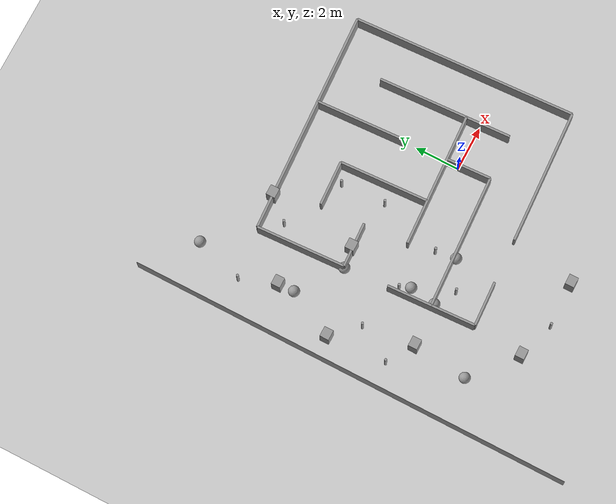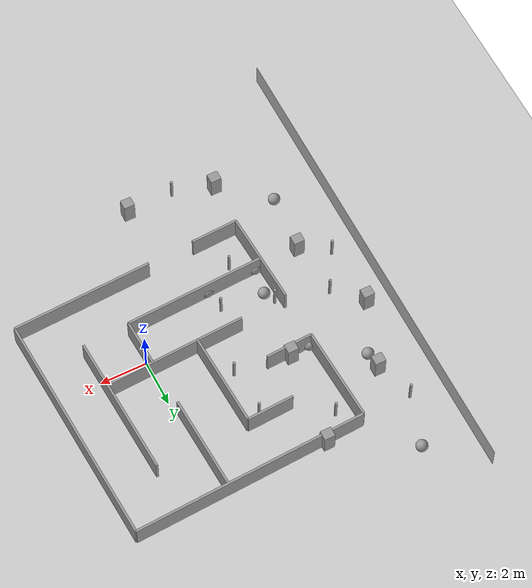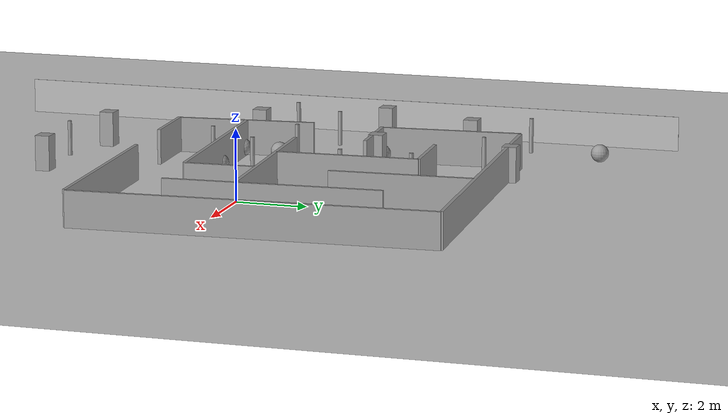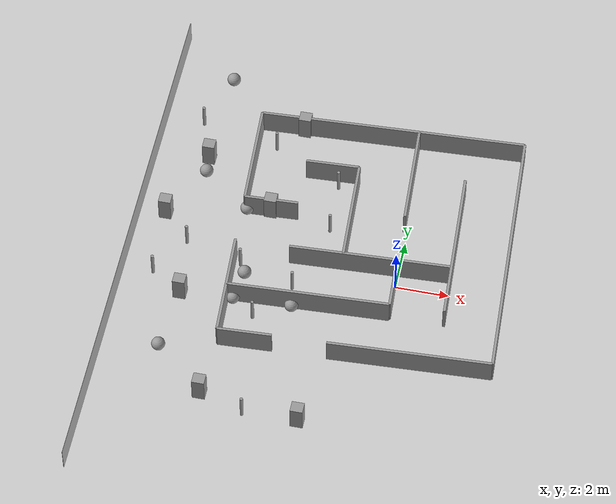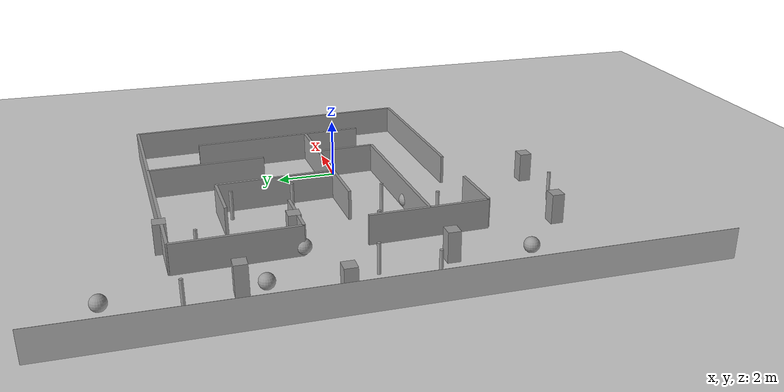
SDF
<sdf version="1.7">
 <world name="default">
  <model name="ground_plane">
   <static>1</static>
   <link name="link">
    <collision name="collision">
     <geometry><plane><normal>0 0 1</normal><size>1 1</size></plane></geometry>
    </collision>
    <visual name="visual">
     <geometry><plane><normal>0 0 1</normal><size>100 100</size></plane></geometry>
     <material>
      <ambient>0.8 0.8 0.8 1</ambient>
      <diffuse>0.8 0.8 0.8 1</diffuse>
      <specular>0.8 0.8 0.8 1</specular>
     </material>
    </visual>
    <inertial>
     <mass>1</mass>
     <inertia><ixx>1</ixx><ixy>0</ixy><ixz>0</ixz><iyy>1</iyy><iyz>0</iyz><izz>1</izz></inertia>
    </inertial>
   </link>
  </model>
  <model name="wall_1">
   <pose>-10 0 0.5 0 0 -1.57</pose>
   <static>1</static>
   <link name="link">
    <collision name="collision"><geometry><box><size>20 0.01 1</size></box></geometry></collision>
    <visual name="visual">
     <geometry><box><size>20 0.01 1</size></box></geometry>
     <material>
      <ambient>0.7 0.7 0.7 1</ambient>
      <diffuse>0.7 0.7 0.7 1</diffuse>
      <specular>0.7 0.7 0.7 1</specular>
     </material>
    </visual>
    <inertial>
     <mass>1</mass>
     <inertia><ixx>1</ixx><ixy>0</ixy><ixz>0</ixz><iyy>1</iyy><iyz>0</iyz><izz>1</izz></inertia>
    </inertial>
   </link>
  </model>
  <model name="s_maze">
   <link name="link_0_clone">
    <inertial>
     <mass>2000</mass>
     <inertia><ixx>16833.3</ixx><ixy>0</ixy><ixz>0</ixz><iyy>168.333</iyy><iyz>0</iyz><izz>16668.3</izz></inertia>
    </inertial>
    <pose>5 0 0 0 -0 0</pose>
    <visual name="visual">
     <geometry><box><size>0.1 10 1</size></box></geometry>
     <material>
      <lighting>1</lighting>
      <script><uri>file://media/materials/scripts/gazebo.material</uri><name>Gazebo/Grey</name></script>
      <shader type="vertex"><normal_map>__default__</normal_map></shader>
      <ambient>0.3 0.3 0.3 1</ambient>
      <diffuse>0.7 0.7 0.7 1</diffuse>
      <specular>0.01 0.01 0.01 1</specular>
      <emissive>0 0 0 1</emissive>
     </material>
    </visual>
    <collision name="collision">
     <geometry><box><size>0.1 10 1</size></box></geometry>
     <surface>
      <friction>
       <ode><mu>1</mu><mu2>1</mu2><fdir1>0 0 0</fdir1><slip1>0</slip1><slip2>0</slip2></ode>
       <torsional>
        <coefficient>1</coefficient>
        <patch_radius>0</patch_radius>
        <surface_radius>0</surface_radius>
        <use_patch_radius>1</use_patch_radius>
        <ode><slip>0</slip></ode>
       </torsional>
      </friction>
      <bounce><restitution_coefficient>0</restitution_coefficient><threshold>1e+06</threshold></bounce>
      <contact>
       <collide_without_contact>0</collide_without_contact>
       <collide_without_contact_bitmask>1</collide_without_contact_bitmask>
       <collide_bitmask>1</collide_bitmask>
       <ode>
        <soft_cfm>0</soft_cfm>
        <soft_erp>0.2</soft_erp>
        <kp>1e+13</kp>
        <kd>1</kd>
        <max_vel>0.01</max_vel>
        <min_depth>0</min_depth>
       </ode>
       <bullet>
        <split_impulse>1</split_impulse>
        <split_impulse_penetration_threshold>-0.01</split_impulse_penetration_threshold>
        <soft_cfm>0</soft_cfm>
        <soft_erp>0.2</soft_erp>
        <kp>1e+13</kp>
        <kd>1</kd>
       </bullet>
      </contact>
     </surface>
    </collision>
   </link>
   <link name="link_0_clone_0_clone">
    <inertial>
     <mass>400</mass>
     <inertia><ixx>166.667</ixx><ixy>0</ixy><ixz>0</ixz><iyy>33.6667</iyy><iyz>0</iyz><izz>133.667</izz></inertia>
    </inertial>
    <pose>1 -2 -0 0 -0 0</pose>
    <visual name="visual">
     <geometry><box><size>0.1 2 1</size></box></geometry>
     <material>
      <lighting>1</lighting>
      <script><uri>file://media/materials/scripts/gazebo.material</uri><name>Gazebo/Grey</name></script>
      <shader type="vertex"><normal_map>__default__</normal_map></shader>
      <ambient>0.3 0.3 0.3 1</ambient>
      <diffuse>0.7 0.7 0.7 1</diffuse>
      <specular>0.01 0.01 0.01 1</specular>
      <emissive>0 0 0 1</emissive>
     </material>
    </visual>
    <collision name="collision">
     <geometry><box><size>0.1 2 1</size></box></geometry>
     <surface>
      <friction>
       <ode><mu>1</mu><mu2>1</mu2><fdir1>0 0 0</fdir1><slip1>0</slip1><slip2>0</slip2></ode>
       <torsional>
        <coefficient>1</coefficient>
        <patch_radius>0</patch_radius>
        <surface_radius>0</surface_radius>
        <use_patch_radius>1</use_patch_radius>
        <ode><slip>0</slip></ode>
       </torsional>
      </friction>
      <bounce><restitution_coefficient>0</restitution_coefficient><threshold>1e+06</threshold></bounce>
      <contact>
       <collide_without_contact>0</collide_without_contact>
       <collide_without_contact_bitmask>1</collide_without_contact_bitmask>
       <collide_bitmask>1</collide_bitmask>
       <ode>
        <soft_cfm>0</soft_cfm>
        <soft_erp>0.2</soft_erp>
        <kp>1e+13</kp>
        <kd>1</kd>
        <max_vel>0.01</max_vel>
        <min_depth>0</min_depth>
       </ode>
       <bullet>
        <split_impulse>1</split_impulse>
        <split_impulse_penetration_threshold>-0.01</split_impulse_penetration_threshold>
        <soft_cfm>0</soft_cfm>
        <soft_erp>0.2</soft_erp>
        <kp>1e+13</kp>
        <kd>1</kd>
       </bullet>
      </contact>
     </surface>
    </collision>
   </link>
   <link name="link_0_clone_1_clone">
    <inertial>
     <mass>2000</mass>
     <inertia><ixx>16833.3</ixx><ixy>0</ixy><ixz>0</ixz><iyy>168.333</iyy><iyz>0</iyz><izz>16668.3</izz></inertia>
    </inertial>
    <pose>-0 5 -0 0 -0 1.5708</pose>
    <visual name="visual">
     <geometry><box><size>0.1 10 1</size></box></geometry>
     <material>
      <lighting>1</lighting>
      <script><uri>file://media/materials/scripts/gazebo.material</uri><name>Gazebo/Grey</name></script>
      <shader type="vertex"><normal_map>__default__</normal_map></shader>
      <ambient>0.3 0.3 0.3 1</ambient>
      <diffuse>0.7 0.7 0.7 1</diffuse>
      <specular>0.01 0.01 0.01 1</specular>
      <emissive>0 0 0 1</emissive>
     </material>
    </visual>
    <collision name="collision">
     <geometry><box><size>0.1 10 1</size></box></geometry>
     <surface>
      <friction>
       <ode><mu>1</mu><mu2>1</mu2><fdir1>0 0 0</fdir1><slip1>0</slip1><slip2>0</slip2></ode>
       <torsional>
        <coefficient>1</coefficient>
        <patch_radius>0</patch_radius>
        <surface_radius>0</surface_radius>
        <use_patch_radius>1</use_patch_radius>
        <ode><slip>0</slip></ode>
       </torsional>
      </friction>
      <bounce><restitution_coefficient>0</restitution_coefficient><threshold>1e+06</threshold></bounce>
      <contact>
       <collide_without_contact>0</collide_without_contact>
       <collide_without_contact_bitmask>1</collide_without_contact_bitmask>
       <collide_bitmask>1</collide_bitmask>
       <ode>
        <soft_cfm>0</soft_cfm>
        <soft_erp>0.2</soft_erp>
        <kp>1e+13</kp>
        <kd>1</kd>
        <max_vel>0.01</max_vel>
        <min_depth>0</min_depth>
       </ode>
       <bullet>
        <split_impulse>1</split_impulse>
        <split_impulse_penetration_threshold>-0.01</split_impulse_penetration_threshold>
        <soft_cfm>0</soft_cfm>
        <soft_erp>0.2</soft_erp>
        <kp>1e+13</kp>
        <kd>1</kd>
       </bullet>
      </contact>
     </surface>
    </collision>
   </link>
   <link name="link_0_clone_1_clone_0">
    <inertial>
     <mass>1200</mass>
     <inertia><ixx>3700</ixx><ixy>0</ixy><ixz>0</ixz><iyy>101</iyy><iyz>0</iyz><izz>3601</izz></inertia>
    </inertial>
    <pose>-2 -3 -0 0 -0 1.5708</pose>
    <visual name="visual">
     <geometry><box><size>0.1 6 1</size></box></geometry>
     <material>
      <lighting>1</lighting>
      <script><uri>file://media/materials/scripts/gazebo.material</uri><name>Gazebo/Grey</name></script>
      <shader type="vertex"><normal_map>__default__</normal_map></shader>
      <ambient>0.3 0.3 0.3 1</ambient>
      <diffuse>0.7 0.7 0.7 1</diffuse>
      <specular>0.01 0.01 0.01 1</specular>
      <emissive>0 0 0 1</emissive>
     </material>
    </visual>
    <collision name="collision">
     <geometry><box><size>0.1 6 1</size></box></geometry>
     <surface>
      <friction>
       <ode><mu>1</mu><mu2>1</mu2><fdir1>0 0 0</fdir1><slip1>0</slip1><slip2>0</slip2></ode>
       <torsional>
        <coefficient>1</coefficient>
        <patch_radius>0</patch_radius>
        <surface_radius>0</surface_radius>
        <use_patch_radius>1</use_patch_radius>
        <ode><slip>0</slip></ode>
       </torsional>
      </friction>
      <bounce><restitution_coefficient>0</restitution_coefficient><threshold>1e+06</threshold></bounce>
      <contact>
       <collide_without_contact>0</collide_without_contact>
       <collide_without_contact_bitmask>1</collide_without_contact_bitmask>
       <collide_bitmask>1</collide_bitmask>
       <ode>
        <soft_cfm>0</soft_cfm>
        <soft_erp>0.2</soft_erp>
        <kp>1e+13</kp>
        <kd>1</kd>
        <max_vel>0.01</max_vel>
        <min_depth>0</min_depth>
       </ode>
       <bullet>
        <split_impulse>1</split_impulse>
        <split_impulse_penetration_threshold>-0.01</split_impulse_penetration_threshold>
        <soft_cfm>0</soft_cfm>
        <soft_erp>0.2</soft_erp>
        <kp>1e+13</kp>
        <kd>1</kd>
       </bullet>
      </contact>
     </surface>
    </collision>
   </link>
   <link name="link_0_clone_1_clone_0_clone">
    <inertial>
     <mass>1200</mass>
     <inertia><ixx>3700</ixx><ixy>0</ixy><ixz>0</ixz><iyy>101</iyy><iyz>0</iyz><izz>3601</izz></inertia>
    </inertial>
    <pose>-0 -1 0 0 -0 1.5708</pose>
    <visual name="visual">
     <geometry><box><size>0.1 6 1</size></box></geometry>
     <material>
      <lighting>1</lighting>
      <script><uri>file://media/materials/scripts/gazebo.material</uri><name>Gazebo/Grey</name></script>
      <shader type="vertex"><normal_map>__default__</normal_map></shader>
      <ambient>0.3 0.3 0.3 1</ambient>
      <diffuse>0.7 0.7 0.7 1</diffuse>
      <specular>0.01 0.01 0.01 1</specular>
      <emissive>0 0 0 1</emissive>
     </material>
    </visual>
    <collision name="collision">
     <geometry><box><size>0.1 6 1</size></box></geometry>
     <surface>
      <friction>
       <ode><mu>1</mu><mu2>1</mu2><fdir1>0 0 0</fdir1><slip1>0</slip1><slip2>0</slip2></ode>
       <torsional>
        <coefficient>1</coefficient>
        <patch_radius>0</patch_radius>
        <surface_radius>0</surface_radius>
        <use_patch_radius>1</use_patch_radius>
        <ode><slip>0</slip></ode>
       </torsional>
      </friction>
      <bounce><restitution_coefficient>0</restitution_coefficient><threshold>1e+06</threshold></bounce>
      <contact>
       <collide_without_contact>0</collide_without_contact>
       <collide_without_contact_bitmask>1</collide_without_contact_bitmask>
       <collide_bitmask>1</collide_bitmask>
       <ode>
        <soft_cfm>0</soft_cfm>
        <soft_erp>0.2</soft_erp>
        <kp>1e+13</kp>
        <kd>1</kd>
        <max_vel>0.01</max_vel>
        <min_depth>0</min_depth>
       </ode>
       <bullet>
        <split_impulse>1</split_impulse>
        <split_impulse_penetration_threshold>-0.01</split_impulse_penetration_threshold>
        <soft_cfm>0</soft_cfm>
        <soft_erp>0.2</soft_erp>
        <kp>1e+13</kp>
        <kd>1</kd>
       </bullet>
      </contact>
     </surface>
    </collision>
   </link>
   <link name="link_0_clone_1_clone_0_clone_0">
    <inertial>
     <mass>1200</mass>
     <inertia><ixx>3700</ixx><ixy>0</ixy><ixz>0</ixz><iyy>101</iyy><iyz>0</iyz><izz>3601</izz></inertia>
    </inertial>
    <pose>2 -5 0 -0.004588 -0.005224 1.5715</pose>
    <visual name="visual">
     <geometry><box><size>0.1 6 1</size></box></geometry>
     <material>
      <lighting>1</lighting>
      <script><uri>file://media/materials/scripts/gazebo.material</uri><name>Gazebo/Grey</name></script>
      <shader type="vertex"><normal_map>__default__</normal_map></shader>
      <ambient>0.3 0.3 0.3 1</ambient>
      <diffuse>0.7 0.7 0.7 1</diffuse>
      <specular>0.01 0.01 0.01 1</specular>
      <emissive>0 0 0 1</emissive>
     </material>
    </visual>
    <collision name="collision">
     <geometry><box><size>0.1 6 1</size></box></geometry>
     <surface>
      <friction>
       <ode><mu>1</mu><mu2>1</mu2><fdir1>0 0 0</fdir1><slip1>0</slip1><slip2>0</slip2></ode>
       <torsional>
        <coefficient>1</coefficient>
        <patch_radius>0</patch_radius>
        <surface_radius>0</surface_radius>
        <use_patch_radius>1</use_patch_radius>
        <ode><slip>0</slip></ode>
       </torsional>
      </friction>
      <bounce><restitution_coefficient>0</restitution_coefficient><threshold>1e+06</threshold></bounce>
      <contact>
       <collide_without_contact>0</collide_without_contact>
       <collide_without_contact_bitmask>1</collide_without_contact_bitmask>
       <collide_bitmask>1</collide_bitmask>
       <ode>
        <soft_cfm>0</soft_cfm>
        <soft_erp>0.2</soft_erp>
        <kp>1e+13</kp>
        <kd>1</kd>
        <max_vel>0.01</max_vel>
        <min_depth>0</min_depth>
       </ode>
       <bullet>
        <split_impulse>1</split_impulse>
        <split_impulse_penetration_threshold>-0.01</split_impulse_penetration_threshold>
        <soft_cfm>0</soft_cfm>
        <soft_erp>0.2</soft_erp>
        <kp>1e+13</kp>
        <kd>1</kd>
       </bullet>
      </contact>
     </surface>
    </collision>
   </link>
   <link name="link_0_clone_1_clone_0_clone_clone">
    <inertial>
     <mass>400</mass>
     <inertia><ixx>166.667</ixx><ixy>0</ixy><ixz>0</ixz><iyy>33.6667</iyy><iyz>0</iyz><izz>133.667</izz></inertia>
    </inertial>
    <pose>-2 3 -0 0 -0 1.5708</pose>
    <visual name="visual">
     <geometry><box><size>0.1 2 1</size></box></geometry>
     <material>
      <lighting>1</lighting>
      <script><uri>file://media/materials/scripts/gazebo.material</uri><name>Gazebo/Grey</name></script>
      <shader type="vertex"><normal_map>__default__</normal_map></shader>
      <ambient>0.3 0.3 0.3 1</ambient>
      <diffuse>0.7 0.7 0.7 1</diffuse>
      <specular>0.01 0.01 0.01 1</specular>
      <emissive>0 0 0 1</emissive>
     </material>
    </visual>
    <collision name="collision">
     <geometry><box><size>0.1 2 1</size></box></geometry>
     <surface>
      <friction>
       <ode><mu>1</mu><mu2>1</mu2><fdir1>0 0 0</fdir1><slip1>0</slip1><slip2>0</slip2></ode>
       <torsional>
        <coefficient>1</coefficient>
        <patch_radius>0</patch_radius>
        <surface_radius>0</surface_radius>
        <use_patch_radius>1</use_patch_radius>
        <ode><slip>0</slip></ode>
       </torsional>
      </friction>
      <bounce><restitution_coefficient>0</restitution_coefficient><threshold>1e+06</threshold></bounce>
      <contact>
       <collide_without_contact>0</collide_without_contact>
       <collide_without_contact_bitmask>1</collide_without_contact_bitmask>
       <collide_bitmask>1</collide_bitmask>
       <ode>
        <soft_cfm>0</soft_cfm>
        <soft_erp>0.2</soft_erp>
        <kp>1e+13</kp>
        <kd>1</kd>
        <max_vel>0.01</max_vel>
        <min_depth>0</min_depth>
       </ode>
       <bullet>
        <split_impulse>1</split_impulse>
        <split_impulse_penetration_threshold>-0.01</split_impulse_penetration_threshold>
        <soft_cfm>0</soft_cfm>
        <soft_erp>0.2</soft_erp>
        <kp>1e+13</kp>
        <kd>1</kd>
       </bullet>
      </contact>
     </surface>
    </collision>
   </link>
   <link name="link_0_clone_1_clone_0_clone_clone_clone">
    <inertial>
     <mass>400</mass>
     <inertia><ixx>166.667</ixx><ixy>0</ixy><ixz>0</ixz><iyy>33.6667</iyy><iyz>0</iyz><izz>133.667</izz></inertia>
    </inertial>
    <pose>-4 1 0 0 -0 1.5708</pose>
    <visual name="visual">
     <geometry><box><size>0.1 2 1</size></box></geometry>
     <material>
      <lighting>1</lighting>
      <script><uri>file://media/materials/scripts/gazebo.material</uri><name>Gazebo/Grey</name></script>
      <shader type="vertex"><normal_map>__default__</normal_map></shader>
      <ambient>0.3 0.3 0.3 1</ambient>
      <diffuse>0.7 0.7 0.7 1</diffuse>
      <specular>0.01 0.01 0.01 1</specular>
      <emissive>0 0 0 1</emissive>
     </material>
    </visual>
    <collision name="collision">
     <geometry><box><size>0.1 2 1</size></box></geometry>
     <surface>
      <friction>
       <ode><mu>1</mu><mu2>1</mu2><fdir1>0 0 0</fdir1><slip1>0</slip1><slip2>0</slip2></ode>
       <torsional>
        <coefficient>1</coefficient>
        <patch_radius>0</patch_radius>
        <surface_radius>0</surface_radius>
        <use_patch_radius>1</use_patch_radius>
        <ode><slip>0</slip></ode>
       </torsional>
      </friction>
      <bounce><restitution_coefficient>0</restitution_coefficient><threshold>1e+06</threshold></bounce>
      <contact>
       <collide_without_contact>0</collide_without_contact>
       <collide_without_contact_bitmask>1</collide_without_contact_bitmask>
       <collide_bitmask>1</collide_bitmask>
       <ode>
        <soft_cfm>0</soft_cfm>
        <soft_erp>0.2</soft_erp>
        <kp>1e+13</kp>
        <kd>1</kd>
        <max_vel>0.01</max_vel>
        <min_depth>0</min_depth>
       </ode>
       <bullet>
        <split_impulse>1</split_impulse>
        <split_impulse_penetration_threshold>-0.01</split_impulse_penetration_threshold>
        <soft_cfm>0</soft_cfm>
        <soft_erp>0.2</soft_erp>
        <kp>1e+13</kp>
        <kd>1</kd>
       </bullet>
      </contact>
     </surface>
    </collision>
   </link>
   <link name="link_0_clone_1_clone_0_clone_clone_clone_0">
    <inertial>
     <mass>400</mass>
     <inertia><ixx>166.667</ixx><ixy>0</ixy><ixz>0</ixz><iyy>33.6667</iyy><iyz>0</iyz><izz>133.667</izz></inertia>
    </inertial>
    <pose>-4 -5 -0 -0.004588 -0.005224 1.5715</pose>
    <visual name="visual">
     <geometry><box><size>0.1 2 1</size></box></geometry>
     <material>
      <lighting>1</lighting>
      <script><uri>file://media/materials/scripts/gazebo.material</uri><name>Gazebo/Grey</name></script>
      <shader type="vertex"><normal_map>__default__</normal_map></shader>
      <ambient>0.3 0.3 0.3 1</ambient>
      <diffuse>0.7 0.7 0.7 1</diffuse>
      <specular>0.01 0.01 0.01 1</specular>
      <emissive>0 0 0 1</emissive>
     </material>
    </visual>
    <collision name="collision">
     <geometry><box><size>0.1 2 1</size></box></geometry>
     <surface>
      <friction>
       <ode><mu>1</mu><mu2>1</mu2><fdir1>0 0 0</fdir1><slip1>0</slip1><slip2>0</slip2></ode>
       <torsional>
        <coefficient>1</coefficient>
        <patch_radius>0</patch_radius>
        <surface_radius>0</surface_radius>
        <use_patch_radius>1</use_patch_radius>
        <ode><slip>0</slip></ode>
       </torsional>
      </friction>
      <bounce><restitution_coefficient>0</restitution_coefficient><threshold>1e+06</threshold></bounce>
      <contact>
       <collide_without_contact>0</collide_without_contact>
       <collide_without_contact_bitmask>1</collide_without_contact_bitmask>
       <collide_bitmask>1</collide_bitmask>
       <ode>
        <soft_cfm>0</soft_cfm>
        <soft_erp>0.2</soft_erp>
        <kp>1e+13</kp>
        <kd>1</kd>
        <max_vel>0.01</max_vel>
        <min_depth>0</min_depth>
       </ode>
       <bullet>
        <split_impulse>1</split_impulse>
        <split_impulse_penetration_threshold>-0.01</split_impulse_penetration_threshold>
        <soft_cfm>0</soft_cfm>
        <soft_erp>0.2</soft_erp>
        <kp>1e+13</kp>
        <kd>1</kd>
       </bullet>
      </contact>
     </surface>
    </collision>
   </link>
   <link name="link_0_clone_2">
    <inertial>
     <mass>1200</mass>
     <inertia><ixx>3700</ixx><ixy>0</ixy><ixz>0</ixz><iyy>101</iyy><iyz>0</iyz><izz>3601</izz></inertia>
    </inertial>
    <pose>3 -0 -0 0 -0 0</pose>
    <visual name="visual">
     <geometry><box><size>0.1 6 1</size></box></geometry>
     <material>
      <lighting>1</lighting>
      <script><uri>file://media/materials/scripts/gazebo.material</uri><name>Gazebo/Grey</name></script>
      <shader type="vertex"><normal_map>__default__</normal_map></shader>
      <ambient>0.3 0.3 0.3 1</ambient>
      <diffuse>0.7 0.7 0.7 1</diffuse>
      <specular>0.01 0.01 0.01 1</specular>
      <emissive>0 0 0 1</emissive>
     </material>
    </visual>
    <collision name="collision">
     <geometry><box><size>0.1 6 1</size></box></geometry>
     <surface>
      <friction>
       <ode><mu>1</mu><mu2>1</mu2><fdir1>0 0 0</fdir1><slip1>0</slip1><slip2>0</slip2></ode>
       <torsional>
        <coefficient>1</coefficient>
        <patch_radius>0</patch_radius>
        <surface_radius>0</surface_radius>
        <use_patch_radius>1</use_patch_radius>
        <ode><slip>0</slip></ode>
       </torsional>
      </friction>
      <bounce><restitution_coefficient>0</restitution_coefficient><threshold>1e+06</threshold></bounce>
      <contact>
       <collide_without_contact>0</collide_without_contact>
       <collide_without_contact_bitmask>1</collide_without_contact_bitmask>
       <collide_bitmask>1</collide_bitmask>
       <ode>
        <soft_cfm>0</soft_cfm>
        <soft_erp>0.2</soft_erp>
        <kp>1e+13</kp>
        <kd>1</kd>
        <max_vel>0.01</max_vel>
        <min_depth>0</min_depth>
       </ode>
       <bullet>
        <split_impulse>1</split_impulse>
        <split_impulse_penetration_threshold>-0.01</split_impulse_penetration_threshold>
        <soft_cfm>0</soft_cfm>
        <soft_erp>0.2</soft_erp>
        <kp>1e+13</kp>
        <kd>1</kd>
       </bullet>
      </contact>
     </surface>
    </collision>
   </link>
   <link name="link_0_clone_2_clone">
    <inertial>
     <mass>0.188114</mass>
     <inertia>
      <ixx>0.0313523</ixx>
      <ixy>0</ixy>
      <ixz>0</ixz>
      <iyy>0.0162309</iyy>
      <iyz>0</iyz>
      <izz>0.0162309</izz>
     </inertia>
    </inertial>
    <pose>-1 1 0 0 -0 0</pose>
    <visual name="visual">
     <geometry><box><size>0.1 4 1</size></box></geometry>
     <material>
      <lighting>1</lighting>
      <script><uri>file://media/materials/scripts/gazebo.material</uri><name>Gazebo/Grey</name></script>
      <shader type="vertex"><normal_map>__default__</normal_map></shader>
      <ambient>0.3 0.3 0.3 1</ambient>
      <diffuse>0.7 0.7 0.7 1</diffuse>
      <specular>0.01 0.01 0.01 1</specular>
      <emissive>0 0 0 1</emissive>
     </material>
    </visual>
    <collision name="collision">
     <geometry><box><size>0.1 4 1</size></box></geometry>
     <surface>
      <friction>
       <ode><mu>1</mu><mu2>1</mu2><fdir1>0 0 0</fdir1><slip1>0</slip1><slip2>0</slip2></ode>
       <torsional>
        <coefficient>1</coefficient>
        <patch_radius>0</patch_radius>
        <surface_radius>0</surface_radius>
        <use_patch_radius>1</use_patch_radius>
        <ode><slip>0</slip></ode>
       </torsional>
      </friction>
      <bounce><restitution_coefficient>0</restitution_coefficient><threshold>1e+06</threshold></bounce>
      <contact>
       <collide_without_contact>0</collide_without_contact>
       <collide_without_contact_bitmask>1</collide_without_contact_bitmask>
       <collide_bitmask>1</collide_bitmask>
       <ode>
        <soft_cfm>0</soft_cfm>
        <soft_erp>0.2</soft_erp>
        <kp>1e+13</kp>
        <kd>1</kd>
        <max_vel>0.01</max_vel>
        <min_depth>0</min_depth>
       </ode>
       <bullet>
        <split_impulse>1</split_impulse>
        <split_impulse_penetration_threshold>-0.01</split_impulse_penetration_threshold>
        <soft_cfm>0</soft_cfm>
        <soft_erp>0.2</soft_erp>
        <kp>1e+13</kp>
        <kd>1</kd>
       </bullet>
      </contact>
     </surface>
    </collision>
   </link>
   <link name="link_0_clone_2_clone_clone">
    <inertial>
     <mass>800</mass>
     <inertia><ixx>1133.33</ixx><ixy>0</ixy><ixz>0</ixz><iyy>67.3333</iyy><iyz>0</iyz><izz>1067.33</izz></inertia>
    </inertial>
    <pose>1 3 -0 0 -0 0</pose>
    <visual name="visual">
     <geometry><box><size>0.1 4 1</size></box></geometry>
     <material>
      <lighting>1</lighting>
      <script><uri>file://media/materials/scripts/gazebo.material</uri><name>Gazebo/Grey</name></script>
      <shader type="vertex"><normal_map>__default__</normal_map></shader>
      <ambient>0.3 0.3 0.3 1</ambient>
      <diffuse>0.7 0.7 0.7 1</diffuse>
      <specular>0.01 0.01 0.01 1</specular>
      <emissive>0 0 0 1</emissive>
     </material>
    </visual>
    <collision name="collision">
     <geometry><box><size>0.1 4 1</size></box></geometry>
     <surface>
      <friction>
       <ode><mu>1</mu><mu2>1</mu2><fdir1>0 0 0</fdir1><slip1>0</slip1><slip2>0</slip2></ode>
       <torsional>
        <coefficient>1</coefficient>
        <patch_radius>0</patch_radius>
        <surface_radius>0</surface_radius>
        <use_patch_radius>1</use_patch_radius>
        <ode><slip>0</slip></ode>
       </torsional>
      </friction>
      <bounce><restitution_coefficient>0</restitution_coefficient><threshold>1e+06</threshold></bounce>
      <contact>
       <collide_without_contact>0</collide_without_contact>
       <collide_without_contact_bitmask>1</collide_without_contact_bitmask>
       <collide_bitmask>1</collide_bitmask>
       <ode>
        <soft_cfm>0</soft_cfm>
        <soft_erp>0.2</soft_erp>
        <kp>1e+13</kp>
        <kd>1</kd>
        <max_vel>0.01</max_vel>
        <min_depth>0</min_depth>
       </ode>
       <bullet>
        <split_impulse>1</split_impulse>
        <split_impulse_penetration_threshold>-0.01</split_impulse_penetration_threshold>
        <soft_cfm>0</soft_cfm>
        <soft_erp>0.2</soft_erp>
        <kp>1e+13</kp>
        <kd>1</kd>
       </bullet>
      </contact>
     </surface>
    </collision>
   </link>
   <link name="link_0_clone_2_clone_clone_0">
    <inertial>
     <mass>800</mass>
     <inertia><ixx>1133.33</ixx><ixy>0</ixy><ixz>0</ixz><iyy>67.3333</iyy><iyz>0</iyz><izz>1067.33</izz></inertia>
    </inertial>
    <pose>-5 3 -0 0.005224 -0.004588 0.000681</pose>
    <visual name="visual">
     <geometry><box><size>0.1 4 1</size></box></geometry>
     <material>
      <lighting>1</lighting>
      <script><uri>file://media/materials/scripts/gazebo.material</uri><name>Gazebo/Grey</name></script>
      <shader type="vertex"><normal_map>__default__</normal_map></shader>
      <ambient>0.3 0.3 0.3 1</ambient>
      <diffuse>0.7 0.7 0.7 1</diffuse>
      <specular>0.01 0.01 0.01 1</specular>
      <emissive>0 0 0 1</emissive>
     </material>
    </visual>
    <collision name="collision">
     <geometry><box><size>0.1 4 1</size></box></geometry>
     <surface>
      <friction>
       <ode><mu>1</mu><mu2>1</mu2><fdir1>0 0 0</fdir1><slip1>0</slip1><slip2>0</slip2></ode>
       <torsional>
        <coefficient>1</coefficient>
        <patch_radius>0</patch_radius>
        <surface_radius>0</surface_radius>
        <use_patch_radius>1</use_patch_radius>
        <ode><slip>0</slip></ode>
       </torsional>
      </friction>
      <bounce><restitution_coefficient>0</restitution_coefficient><threshold>1e+06</threshold></bounce>
      <contact>
       <collide_without_contact>0</collide_without_contact>
       <collide_without_contact_bitmask>1</collide_without_contact_bitmask>
       <collide_bitmask>1</collide_bitmask>
       <ode>
        <soft_cfm>0</soft_cfm>
        <soft_erp>0.2</soft_erp>
        <kp>1e+13</kp>
        <kd>1</kd>
        <max_vel>0.01</max_vel>
        <min_depth>0</min_depth>
       </ode>
       <bullet>
        <split_impulse>1</split_impulse>
        <split_impulse_penetration_threshold>-0.01</split_impulse_penetration_threshold>
        <soft_cfm>0</soft_cfm>
        <soft_erp>0.2</soft_erp>
        <kp>1e+13</kp>
        <kd>1</kd>
       </bullet>
      </contact>
     </surface>
    </collision>
   </link>
   <link name="link_0_clone_2_clone_clone_0_clone">
    <inertial>
     <mass>800</mass>
     <inertia><ixx>1133.33</ixx><ixy>0</ixy><ixz>0</ixz><iyy>67.3333</iyy><iyz>0</iyz><izz>1067.33</izz></inertia>
    </inertial>
    <pose>-5 -3 -0 0.010445 -0.009179 0.001338</pose>
    <visual name="visual">
     <geometry><box><size>0.1 4 1</size></box></geometry>
     <material>
      <lighting>1</lighting>
      <script><uri>file://media/materials/scripts/gazebo.material</uri><name>Gazebo/Grey</name></script>
      <shader type="vertex"><normal_map>__default__</normal_map></shader>
      <ambient>0.3 0.3 0.3 1</ambient>
      <diffuse>0.7 0.7 0.7 1</diffuse>
      <specular>0.01 0.01 0.01 1</specular>
      <emissive>0 0 0 1</emissive>
     </material>
    </visual>
    <collision name="collision">
     <geometry><box><size>0.1 4 1</size></box></geometry>
     <surface>
      <friction>
       <ode><mu>1</mu><mu2>1</mu2><fdir1>0 0 0</fdir1><slip1>0</slip1><slip2>0</slip2></ode>
       <torsional>
        <coefficient>1</coefficient>
        <patch_radius>0</patch_radius>
        <surface_radius>0</surface_radius>
        <use_patch_radius>1</use_patch_radius>
        <ode><slip>0</slip></ode>
       </torsional>
      </friction>
      <bounce><restitution_coefficient>0</restitution_coefficient><threshold>1e+06</threshold></bounce>
      <contact>
       <collide_without_contact>0</collide_without_contact>
       <collide_without_contact_bitmask>1</collide_without_contact_bitmask>
       <collide_bitmask>1</collide_bitmask>
       <ode>
        <soft_cfm>0</soft_cfm>
        <soft_erp>0.2</soft_erp>
        <kp>1e+13</kp>
        <kd>1</kd>
        <max_vel>0.01</max_vel>
        <min_depth>0</min_depth>
       </ode>
       <bullet>
        <split_impulse>1</split_impulse>
        <split_impulse_penetration_threshold>-0.01</split_impulse_penetration_threshold>
        <soft_cfm>0</soft_cfm>
        <soft_erp>0.2</soft_erp>
        <kp>1e+13</kp>
        <kd>1</kd>
       </bullet>
      </contact>
     </surface>
    </collision>
   </link>
   <static>0</static>
   <pose>-1.10067 1.49042 0.499698 -7.6e-05 1.5e-05 0.04861</pose>
  </model>
  <model name="unit_box_clone_0">
   <pose>-5.18539 2.39276 0.499996 -4e-05 -5.2e-05 -3.4e-05</pose>
   <link name="link">
    <inertial>
     <mass>1</mass>
     <inertia>
      <ixx>0.166667</ixx>
      <ixy>0</ixy>
      <ixz>0</ixz>
      <iyy>0.166667</iyy>
      <iyz>0</iyz>
      <izz>0.166667</izz>
     </inertia>
    </inertial>
    <collision name="collision"><geometry><box><size>0.459236 0.414137 1</size></box></geometry></collision>
    <visual name="visual">
     <geometry><box><size>0.459236 0.414137 1</size></box></geometry>
     <material>
      <script><name>Gazebo/Grey</name><uri>file://media/materials/scripts/gazebo.material</uri></script>
     </material>
    </visual>
   </link>
  </model>
  <model name="unit_box_clone_1">
   <pose>-4.69438 6.38062 0.499996 -4e-05 5.2e-05 0.000173</pose>
   <link name="link">
    <inertial>
     <mass>1</mass>
     <inertia>
      <ixx>0.166667</ixx>
      <ixy>0</ixy>
      <ixz>0</ixz>
      <iyy>0.166667</iyy>
      <iyz>0</iyz>
      <izz>0.166667</izz>
     </inertia>
    </inertial>
    <collision name="collision"><geometry><box><size>0.459236 0.414137 1</size></box></geometry></collision>
    <visual name="visual">
     <geometry><box><size>0.459236 0.414137 1</size></box></geometry>
     <material>
      <script><name>Gazebo/Grey</name><uri>file://media/materials/scripts/gazebo.material</uri></script>
     </material>
    </visual>
   </link>
  </model>
  <model name="unit_box_clone_5">
   <pose>-2.31514 -6.47687 0.499971 0.000103 3.2e-05 0.00014</pose>
   <link name="link">
    <inertial>
     <mass>1</mass>
     <inertia>
      <ixx>0.166667</ixx>
      <ixy>0</ixy>
      <ixz>0</ixz>
      <iyy>0.166667</iyy>
      <iyz>0</iyz>
      <izz>0.166667</izz>
     </inertia>
    </inertial>
    <collision name="collision"><geometry><box><size>0.459236 0.414137 1</size></box></geometry></collision>
    <visual name="visual">
     <geometry><box><size>0.459236 0.414137 1</size></box></geometry>
     <material>
      <script><name>Gazebo/Grey</name><uri>file://media/materials/scripts/gazebo.material</uri></script>
     </material>
    </visual>
   </link>
  </model>
  <model name="unit_box_clone_6">
   <pose>-6.00001 -5.99993 0.499996 -4e-05 -5.2e-05 -2.5e-05</pose>
   <link name="link">
    <inertial>
     <mass>1</mass>
     <inertia>
      <ixx>0.166667</ixx>
      <ixy>0</ixy>
      <ixz>0</ixz>
      <iyy>0.166667</iyy>
      <iyz>0</iyz>
      <izz>0.166667</izz>
     </inertia>
    </inertial>
    <collision name="collision"><geometry><box><size>0.459236 0.414137 1</size></box></geometry></collision>
    <visual name="visual">
     <geometry><box><size>0.459236 0.414137 1</size></box></geometry>
     <material>
      <script><name>Gazebo/Grey</name><uri>file://media/materials/scripts/gazebo.material</uri></script>
     </material>
    </visual>
   </link>
  </model>
  <model name="unit_box_clone_7">
   <pose>-7.67556 -1.87902 0.499996 -4e-05 -5.2e-05 -3.3e-05</pose>
   <link name="link">
    <inertial>
     <mass>1</mass>
     <inertia>
      <ixx>0.166667</ixx>
      <ixy>0</ixy>
      <ixz>0</ixz>
      <iyy>0.166667</iyy>
      <iyz>0</iyz>
      <izz>0.166667</izz>
     </inertia>
    </inertial>
    <collision name="collision"><geometry><box><size>0.459236 0.414137 1</size></box></geometry></collision>
    <visual name="visual">
     <geometry><box><size>0.459236 0.414137 1</size></box></geometry>
     <material>
      <script><name>Gazebo/Grey</name><uri>file://media/materials/scripts/gazebo.material</uri></script>
     </material>
    </visual>
   </link>
  </model>
  <model name="unit_box_clone_8">
   <pose>-7.99322 4.39185 0.499996 -4e-05 5.2e-05 0.000155</pose>
   <link name="link">
    <inertial>
     <mass>1</mass>
     <inertia>
      <ixx>0.166667</ixx>
      <ixy>0</ixy>
      <ixz>0</ixz>
      <iyy>0.166667</iyy>
      <iyz>0</iyz>
      <izz>0.166667</izz>
     </inertia>
    </inertial>
    <collision name="collision"><geometry><box><size>0.459236 0.414137 1</size></box></geometry></collision>
    <visual name="visual">
     <geometry><box><size>0.459236 0.414137 1</size></box></geometry>
     <material>
      <script><name>Gazebo/Grey</name><uri>file://media/materials/scripts/gazebo.material</uri></script>
     </material>
    </visual>
   </link>
  </model>
  <model name="unit_sphere">
   <pose>-5.53333 -0.615366 0.25201 0 -0 0</pose>
   <link name="link">
    <inertial>
     <mass>1</mass>
     <inertia><ixx>0.1</ixx><ixy>0</ixy><ixz>0</ixz><iyy>0.1</iyy><iyz>0</iyz><izz>0.1</izz></inertia>
    </inertial>
    <collision name="collision"><geometry><sphere><radius>0.25201</radius></sphere></geometry></collision>
    <visual name="visual">
     <geometry><sphere><radius>0.25201</radius></sphere></geometry>
     <material>
      <script><name>Gazebo/Grey</name><uri>file://media/materials/scripts/gazebo.material</uri></script>
     </material>
    </visual>
   </link>
  </model>
  <model name="unit_box_clone_9">
   <pose>-9.01649 1.55816 0.499996 -4e-05 -5.2e-05 -6.2e-05</pose>
   <link name="link">
    <inertial>
     <mass>1</mass>
     <inertia>
      <ixx>0.166667</ixx>
      <ixy>0</ixy>
      <ixz>0</ixz>
      <iyy>0.166667</iyy>
      <iyz>0</iyz>
      <izz>0.166667</izz>
     </inertia>
    </inertial>
    <collision name="collision"><geometry><box><size>0.459236 0.414137 1</size></box></geometry></collision>
    <visual name="visual">
     <geometry><box><size>0.459236 0.414137 1</size></box></geometry>
     <material>
      <script><name>Gazebo/Grey</name><uri>file://media/materials/scripts/gazebo.material</uri></script>
     </material>
    </visual>
   </link>
  </model>
  <model name="unit_sphere_clone_3">
   <pose>-6.06949 2.26927 0.25201 0 -0 0</pose>
   <link name="link">
    <inertial>
     <mass>1</mass>
     <inertia><ixx>0.1</ixx><ixy>0</ixy><ixz>0</ixz><iyy>0.1</iyy><iyz>0</iyz><izz>0.1</izz></inertia>
    </inertial>
    <collision name="collision"><geometry><sphere><radius>0.25201</radius></sphere></geometry></collision>
    <visual name="visual">
     <geometry><sphere><radius>0.25201</radius></sphere></geometry>
     <material>
      <script><name>Gazebo/Grey</name><uri>file://media/materials/scripts/gazebo.material</uri></script>
     </material>
    </visual>
   </link>
  </model>
  <model name="unit_sphere_clone_4">
   <pose>-7.94192 3.67398 0.25201 0 -0 0</pose>
   <link name="link">
    <inertial>
     <mass>1</mass>
     <inertia><ixx>0.1</ixx><ixy>0</ixy><ixz>0</ixz><iyy>0.1</iyy><iyz>0</iyz><izz>0.1</izz></inertia>
    </inertial>
    <collision name="collision"><geometry><sphere><radius>0.25201</radius></sphere></geometry></collision>
    <visual name="visual">
     <geometry><sphere><radius>0.25201</radius></sphere></geometry>
     <material>
      <script><name>Gazebo/Grey</name><uri>file://media/materials/scripts/gazebo.material</uri></script>
     </material>
    </visual>
   </link>
  </model>
  <model name="unit_sphere_clone_5">
   <pose>-5.71228 -1.79421 0.25201 0.319643 0.172845 -0.174766</pose>
   <link name="link">
    <inertial>
     <mass>1</mass>
     <inertia><ixx>0.1</ixx><ixy>0</ixy><ixz>0</ixz><iyy>0.1</iyy><iyz>0</iyz><izz>0.1</izz></inertia>
    </inertial>
    <collision name="collision"><geometry><sphere><radius>0.25201</radius></sphere></geometry></collision>
    <visual name="visual">
     <geometry><sphere><radius>0.25201</radius></sphere></geometry>
     <material>
      <script><name>Gazebo/Grey</name><uri>file://media/materials/scripts/gazebo.material</uri></script>
     </material>
    </visual>
   </link>
  </model>
  <model name="unit_sphere_clone_9">
   <pose>-7.88641 8.17629 0.25201 0 -0 0</pose>
   <link name="link">
    <inertial>
     <mass>1</mass>
     <inertia><ixx>0.1</ixx><ixy>0</ixy><ixz>0</ixz><iyy>0.1</iyy><iyz>0</iyz><izz>0.1</izz></inertia>
    </inertial>
    <collision name="collision"><geometry><sphere><radius>0.25201</radius></sphere></geometry></collision>
    <visual name="visual">
     <geometry><sphere><radius>0.25201</radius></sphere></geometry>
     <material>
      <script><name>Gazebo/Grey</name><uri>file://media/materials/scripts/gazebo.material</uri></script>
     </material>
    </visual>
   </link>
  </model>
  <model name="unit_sphere_clone_10">
   <pose>-7.90737 -4.35078 0.25201 0 -0 0</pose>
   <link name="link">
    <inertial>
     <mass>1</mass>
     <inertia><ixx>0.1</ixx><ixy>0</ixy><ixz>0</ixz><iyy>0.1</iyy><iyz>0</iyz><izz>0.1</izz></inertia>
    </inertial>
    <collision name="collision"><geometry><sphere><radius>0.25201</radius></sphere></geometry></collision>
    <visual name="visual">
     <geometry><sphere><radius>0.25201</radius></sphere></geometry>
     <material>
      <script><name>Gazebo/Grey</name><uri>file://media/materials/scripts/gazebo.material</uri></script>
     </material>
    </visual>
   </link>
  </model>
  <model name="unit_sphere_clone_11">
   <pose>-3.54298 -1.71444 0.25201 0 -0 0</pose>
   <link name="link">
    <inertial>
     <mass>1</mass>
     <inertia><ixx>0.1</ixx><ixy>0</ixy><ixz>0</ixz><iyy>0.1</iyy><iyz>0</iyz><izz>0.1</izz></inertia>
    </inertial>
    <collision name="collision"><geometry><sphere><radius>0.25201</radius></sphere></geometry></collision>
    <visual name="visual">
     <geometry><sphere><radius>0.25201</radius></sphere></geometry>
     <material>
      <script><name>Gazebo/Grey</name><uri>file://media/materials/scripts/gazebo.material</uri></script>
     </material>
    </visual>
   </link>
  </model>
  <model name="unit_cylinder_clone">
   <pose>-2.94305 4.03325 0.499885 2e-06 2.7e-05 -0.0043</pose>
   <link name="link">
    <inertial>
     <mass>1</mass>
     <inertia><ixx>0.145833</ixx><ixy>0</ixy><ixz>0</ixz><iyy>0.145833</iyy><iyz>0</iyz><izz>0.125</izz></inertia>
    </inertial>
    <collision name="collision">
     <geometry><cylinder><radius>0.0591411</radius><length>1</length></cylinder></geometry>
    </collision>
    <visual name="visual">
     <geometry><cylinder><radius>0.0591411</radius><length>1</length></cylinder></geometry>
     <material>
      <script><name>Gazebo/Grey</name><uri>file://media/materials/scripts/gazebo.material</uri></script>
     </material>
    </visual>
   </link>
  </model>
  <model name="unit_cylinder_clone_0">
   <pose>-2.86264 2.02079 0.499885 2e-06 2.7e-05 -0.004123</pose>
   <link name="link">
    <inertial>
     <mass>1</mass>
     <inertia><ixx>0.145833</ixx><ixy>0</ixy><ixz>0</ixz><iyy>0.145833</iyy><iyz>0</iyz><izz>0.125</izz></inertia>
    </inertial>
    <collision name="collision">
     <geometry><cylinder><radius>0.0591411</radius><length>1</length></cylinder></geometry>
    </collision>
    <visual name="visual">
     <geometry><cylinder><radius>0.0591411</radius><length>1</length></cylinder></geometry>
     <material>
      <script><name>Gazebo/Grey</name><uri>file://media/materials/scripts/gazebo.material</uri></script>
     </material>
    </visual>
   </link>
  </model>
  <model name="unit_cylinder_clone_1">
   <pose>-4.85044 -2.3757 0.499885 2e-06 2.7e-05 -0.004075</pose>
   <link name="link">
    <inertial>
     <mass>1</mass>
     <inertia><ixx>0.145833</ixx><ixy>0</ixy><ixz>0</ixz><iyy>0.145833</iyy><iyz>0</iyz><izz>0.125</izz></inertia>
    </inertial>
    <collision name="collision">
     <geometry><cylinder><radius>0.0591411</radius><length>1</length></cylinder></geometry>
    </collision>
    <visual name="visual">
     <geometry><cylinder><radius>0.0591411</radius><length>1</length></cylinder></geometry>
     <material>
      <script><name>Gazebo/Grey</name><uri>file://media/materials/scripts/gazebo.material</uri></script>
     </material>
    </visual>
   </link>
  </model>
  <model name="unit_cylinder_clone_6">
   <pose>-5.59011 5.38138 0.499885 2e-06 2.7e-05 -0.0043</pose>
   <link name="link">
    <inertial>
     <mass>1</mass>
     <inertia><ixx>0.145833</ixx><ixy>0</ixy><ixz>0</ixz><iyy>0.145833</iyy><iyz>0</iyz><izz>0.125</izz></inertia>
    </inertial>
    <collision name="collision">
     <geometry><cylinder><radius>0.0591411</radius><length>1</length></cylinder></geometry>
    </collision>
    <visual name="visual">
     <geometry><cylinder><radius>0.0591411</radius><length>1</length></cylinder></geometry>
     <material>
      <script><name>Gazebo/Grey</name><uri>file://media/materials/scripts/gazebo.material</uri></script>
     </material>
    </visual>
   </link>
  </model>
  <model name="unit_cylinder_clone_7">
   <pose>-5.78536 -0.167342 0.499885 2e-06 2.7e-05 -0.004298</pose>
   <link name="link">
    <inertial>
     <mass>1</mass>
     <inertia><ixx>0.145833</ixx><ixy>0</ixy><ixz>0</ixz><iyy>0.145833</iyy><iyz>0</iyz><izz>0.125</izz></inertia>
    </inertial>
    <collision name="collision">
     <geometry><cylinder><radius>0.0591411</radius><length>1</length></cylinder></geometry>
    </collision>
    <visual name="visual">
     <geometry><cylinder><radius>0.0591411</radius><length>1</length></cylinder></geometry>
     <material>
      <script><name>Gazebo/Grey</name><uri>file://media/materials/scripts/gazebo.material</uri></script>
     </material>
    </visual>
   </link>
  </model>
  <model name="unit_cylinder_clone_10">
   <pose>-3.70175 -0.806578 0.499885 2e-06 2.7e-05 -0.004241</pose>
   <link name="link">
    <inertial>
     <mass>1</mass>
     <inertia><ixx>0.145833</ixx><ixy>0</ixy><ixz>0</ixz><iyy>0.145833</iyy><iyz>0</iyz><izz>0.125</izz></inertia>
    </inertial>
    <collision name="collision">
     <geometry><cylinder><radius>0.0591411</radius><length>1</length></cylinder></geometry>
    </collision>
    <visual name="visual">
     <geometry><cylinder><radius>0.0591411</radius><length>1</length></cylinder></geometry>
     <material>
      <script><name>Gazebo/Grey</name><uri>file://media/materials/scripts/gazebo.material</uri></script>
     </material>
    </visual>
   </link>
  </model>
  <model name="unit_cylinder_clone_14">
   <pose>-4.32798 -6.54481 0.499885 2e-06 2.7e-05 -0.00388</pose>
   <link name="link">
    <inertial>
     <mass>1</mass>
     <inertia><ixx>0.145833</ixx><ixy>0</ixy><ixz>0</ixz><iyy>0.145833</iyy><iyz>0</iyz><izz>0.125</izz></inertia>
    </inertial>
    <collision name="collision">
     <geometry><cylinder><radius>0.0591411</radius><length>1</length></cylinder></geometry>
    </collision>
    <visual name="visual">
     <geometry><cylinder><radius>0.0591411</radius><length>1</length></cylinder></geometry>
     <material>
      <script><name>Gazebo/Grey</name><uri>file://media/materials/scripts/gazebo.material</uri></script>
     </material>
    </visual>
   </link>
  </model>
  <model name="unit_cylinder_clone_18">
   <pose>-8.56262 6.00001 0.499885 0 2.4e-05 -0.003728</pose>
   <link name="link">
    <inertial>
     <mass>1</mass>
     <inertia><ixx>0.145833</ixx><ixy>0</ixy><ixz>0</ixz><iyy>0.145833</iyy><iyz>0</iyz><izz>0.125</izz></inertia>
    </inertial>
    <collision name="collision">
     <geometry><cylinder><radius>0.0591411</radius><length>1</length></cylinder></geometry>
    </collision>
    <visual name="visual">
     <geometry><cylinder><radius>0.0591411</radius><length>1</length></cylinder></geometry>
     <material>
      <script><name>Gazebo/Grey</name><uri>file://media/materials/scripts/gazebo.material</uri></script>
     </material>
    </visual>
   </link>
  </model>
  <model name="unit_cylinder_clone_19">
   <pose>-8.87136 -1.13275 0.499885 -1e-06 2e-05 -0.003772</pose>
   <link name="link">
    <inertial>
     <mass>1</mass>
     <inertia><ixx>0.145833</ixx><ixy>0</ixy><ixz>0</ixz><iyy>0.145833</iyy><iyz>0</iyz><izz>0.125</izz></inertia>
    </inertial>
    <collision name="collision">
     <geometry><cylinder><radius>0.0591411</radius><length>1</length></cylinder></geometry>
    </collision>
    <visual name="visual">
     <geometry><cylinder><radius>0.0591411</radius><length>1</length></cylinder></geometry>
     <material>
      <script><name>Gazebo/Grey</name><uri>file://media/materials/scripts/gazebo.material</uri></script>
     </material>
    </visual>
   </link>
  </model>
  <model name="unit_cylinder_clone_20">
   <pose>-7.94851 0.435369 0.499885 -3e-06 1.7e-05 -0.003846</pose>
   <link name="link">
    <inertial>
     <mass>1</mass>
     <inertia><ixx>0.145833</ixx><ixy>0</ixy><ixz>0</ixz><iyy>0.145833</iyy><iyz>0</iyz><izz>0.125</izz></inertia>
    </inertial>
    <collision name="collision">
     <geometry><cylinder><radius>0.0591411</radius><length>1</length></cylinder></geometry>
    </collision>
    <visual name="visual">
     <geometry><cylinder><radius>0.0591411</radius><length>1</length></cylinder></geometry>
     <material>
      <script><name>Gazebo/Grey</name><uri>file://media/materials/scripts/gazebo.material</uri></script>
     </material>
    </visual>
   </link>
  </model>
 </world>
</sdf>
